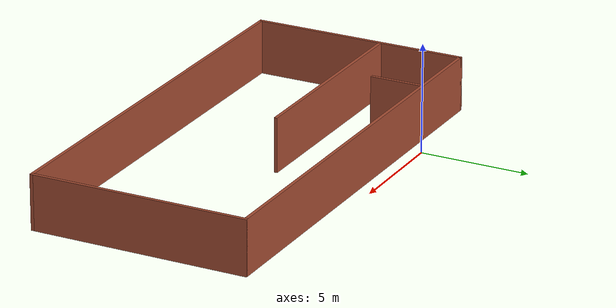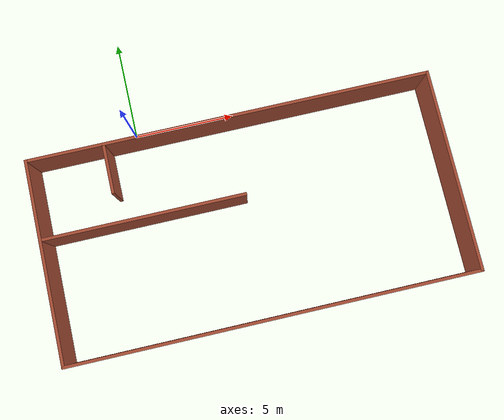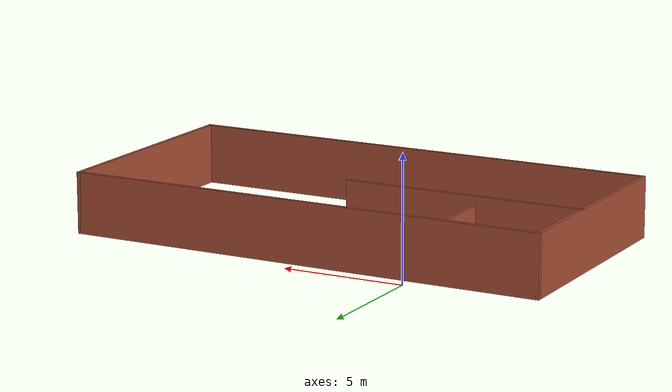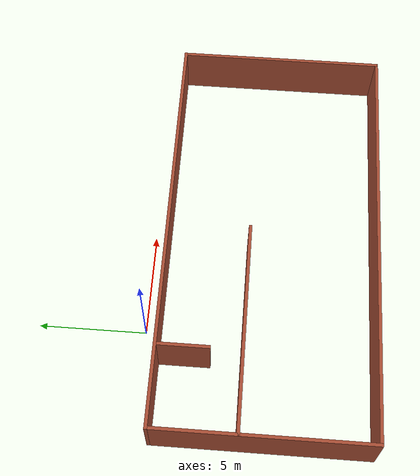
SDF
<?xml version='1.0'?>
<sdf version='1.6'>
  <model name='tesetarena1'>
    <pose frame=''>4.755 -5.585 0 0 -0 0</pose>
    <link name='Wall_10'>
      <collision name='Wall_10_Collision'>
        <geometry>
          <box>
            <size>2.5 0.15 2.5</size>
          </box>
        </geometry>
        <pose frame=''>0 0 1.25 0 -0 0</pose>
      </collision>
      <visual name='Wall_10_Visual'>
        <pose frame=''>0 0 1.25 0 -0 0</pose>
        <geometry>
          <box>
            <size>2.5 0.15 2.5</size>
          </box>
        </geometry>
        <material>
          <script>
            <uri>file://media/materials/scripts/gazebo.material</uri>
            <name>Gazebo/Bricks</name>
          </script>
          <ambient>1 1 1 1</ambient>
        </material>
        <meta>
          <layer>0</layer>
        </meta>
      </visual>
      <pose frame=''>-6.15015 3.71937 0 0 0 -1.5708</pose>
    </link>
    <link name='Wall_13'>
      <collision name='Wall_13_Collision'>
        <geometry>
          <box>
            <size>10 0.15 2.5</size>
          </box>
        </geometry>
        <pose frame=''>0 0 1.25 0 -0 0</pose>
      </collision>
      <visual name='Wall_13_Visual'>
        <pose frame=''>0 0 1.25 0 -0 0</pose>
        <geometry>
          <box>
            <size>10 0.15 2.5</size>
          </box>
        </geometry>
        <material>
          <script>
            <uri>file://media/materials/scripts/gazebo.material</uri>
            <name>Gazebo/Bricks</name>
          </script>
          <ambient>1 1 1 1</ambient>
        </material>
        <meta>
          <layer>0</layer>
        </meta>
      </visual>
      <pose frame=''>-4.97515 1.04437 0 0 -0 3.14159</pose>
    </link>
    <link name='Wall_2'>
      <collision name='Wall_2_Collision'>
        <geometry>
          <box>
            <size>20 0.15 2.5</size>
          </box>
        </geometry>
        <pose frame=''>0 0 1.25 0 -0 0</pose>
      </collision>
      <visual name='Wall_2_Visual'>
        <pose frame=''>0 0 1.25 0 -0 0</pose>
        <geometry>
          <box>
            <size>20 0.15 2.5</size>
          </box>
        </geometry>
        <material>
          <script>
            <uri>file://media/materials/scripts/gazebo.material</uri>
            <name>Gazebo/Bricks</name>
          </script>
          <ambient>1 1 1 1</ambient>
        </material>
        <meta>
          <layer>0</layer>
        </meta>
      </visual>
      <pose frame=''>0 4.925 0 0 -0 0</pose>
    </link>
    <link name='Wall_4'>
      <collision name='Wall_4_Collision'>
        <geometry>
          <box>
            <size>10 0.15 2.5</size>
          </box>
        </geometry>
        <pose frame=''>0 0 1.25 0 -0 0</pose>
      </collision>
      <visual name='Wall_4_Visual'>
        <pose frame=''>0 0 1.25 0 -0 0</pose>
        <geometry>
          <box>
            <size>10 0.15 2.5</size>
          </box>
        </geometry>
        <material>
          <script>
            <uri>file://media/materials/scripts/gazebo.material</uri>
            <name>Gazebo/Bricks</name>
          </script>
          <ambient>1 1 1 1</ambient>
        </material>
        <meta>
          <layer>0</layer>
        </meta>
      </visual>
      <pose frame=''>9.925 0 0 0 0 -1.5708</pose>
    </link>
    <link name='Wall_6'>
      <collision name='Wall_6_Collision'>
        <geometry>
          <box>
            <size>10 0.15 2.5</size>
          </box>
        </geometry>
        <pose frame=''>0 0 1.25 0 -0 0</pose>
      </collision>
      <visual name='Wall_6_Visual'>
        <pose frame=''>0 0 1.25 0 -0 0</pose>
        <geometry>
          <box>
            <size>10 0.15 2.5</size>
          </box>
        </geometry>
        <material>
          <script>
            <uri>file://media/materials/scripts/gazebo.material</uri>
            <name>Gazebo/Bricks</name>
          </script>
          <ambient>1 1 1 1</ambient>
        </material>
        <meta>
          <layer>0</layer>
        </meta>
      </visual>
      <pose frame=''>-9.925 0 0 0 0 -1.5708</pose>
    </link>
    <link name='Wall_8'>
      <collision name='Wall_8_Collision'>
        <geometry>
          <box>
            <size>20 0.15 2.5</size>
          </box>
        </geometry>
        <pose frame=''>0 0 1.25 0 -0 0</pose>
      </collision>
      <visual name='Wall_8_Visual'>
        <pose frame=''>0 0 1.25 0 -0 0</pose>
        <geometry>
          <box>
            <size>20 0.15 2.5</size>
          </box>
        </geometry>
        <material>
          <script>
            <uri>file://media/materials/scripts/gazebo.material</uri>
            <name>Gazebo/Bricks</name>
          </script>
          <ambient>1 1 1 1</ambient>
        </material>
        <meta>
          <layer>0</layer>
        </meta>
      </visual>
      <pose frame=''>0 -4.925 0 0 -0 0</pose>
    </link>
    <static>1</static>
  </model>
</sdf>
